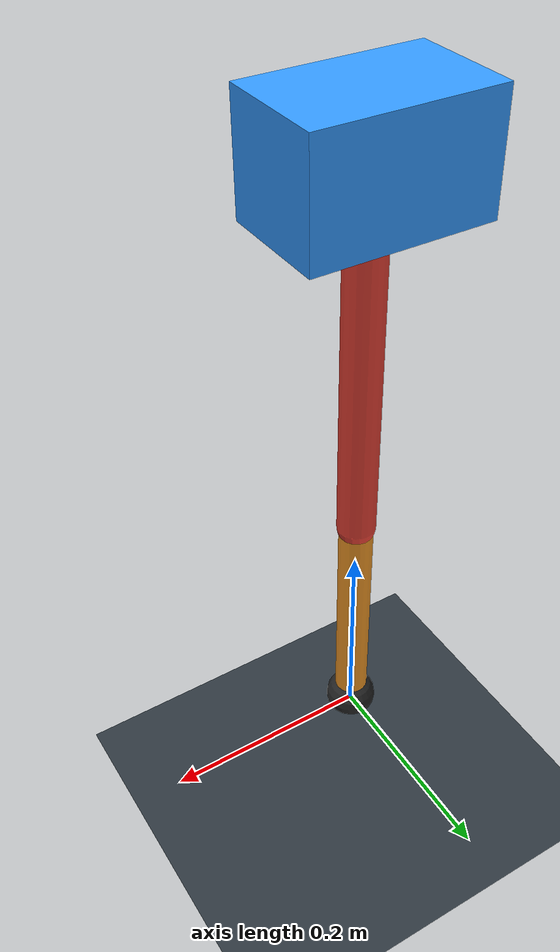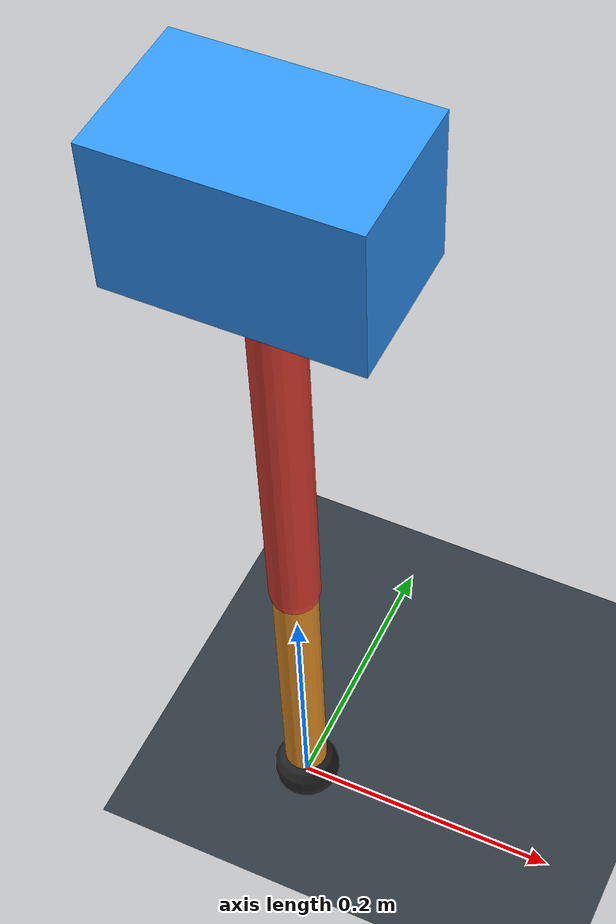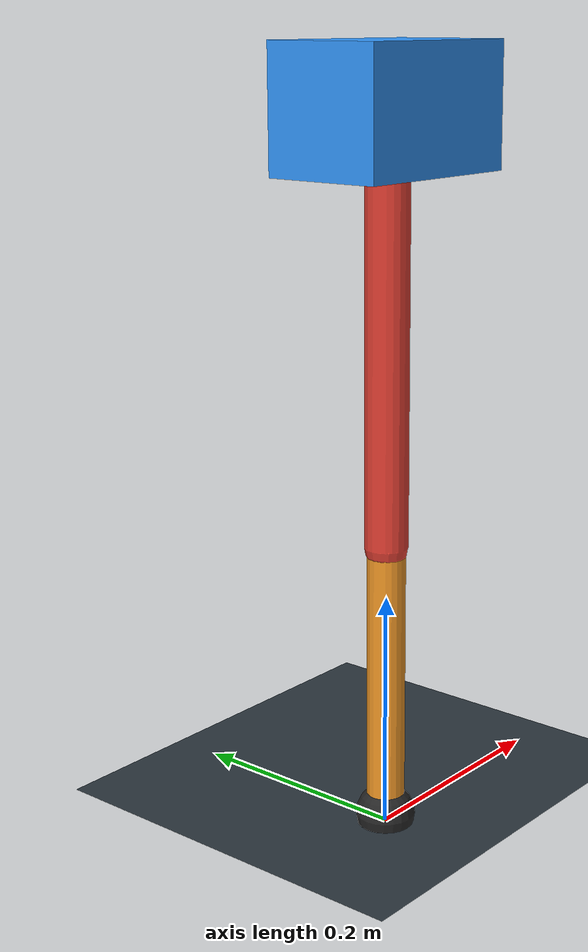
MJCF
<mujoco model="single_axis_two_bar">
  <compiler angle="radian" inertiafromgeom="true"/>
  <option timestep="0.001" integrator="implicitfast" gravity="0 0 -9.81"/>
  <default>
    <joint damping="0.08"/>
    <geom friction="1.2 0.01 0.0001" condim="3"/>
  </default>
  <worldbody>
    <geom name="floor" type="plane" size="5 5 0.1" rgba="0.18 0.22 0.25 1"/>
    <body name="carriage" pos="0 0 0.5935681809007906">
      <joint name="pole_slide" type="slide" axis="0 0 1"/>
      <geom name="payload" type="box" size="0.08 0.05 0.05" mass="3.134621029302633" rgba="0.2 0.6 1 1"/>
      <body name="thigh" pos="0 0 0">
        <joint name="hip" type="hinge" axis="0 1 0"/>
        <geom name="thigh_link" type="capsule" fromto="0 0 0 0 0 -0.34993112942055365" size="0.018" mass="0.24933055364405782" rgba="0.9 0.25 0.2 1"/>
        <body name="shank" pos="0 0 -0.34993112942055365">
          <joint name="knee" type="hinge" axis="0 1 0"/>
          <geom name="shank_link" type="capsule" fromto="0 0 0 0 0 -0.23622163439469435" size="0.016" mass="0.1683110358997228" rgba="0.95 0.6 0.15 1"/>
          <geom name="foot" type="sphere" pos="0 0 -0.23622163439469435" size="0.025" mass="0.03" rgba="0.15 0.15 0.15 1"/>
          <site name="toe" pos="0 0 -0.23622163439469435" size="0.008"/>
        </body>
      </body>
    </body>
  </worldbody>
  <actuator>
    <motor name="hip_motor" joint="hip" ctrlrange="-22.67408957760366 22.67408957760366"/>
    <motor name="knee_motor" joint="knee" ctrlrange="-127.1087637640433 127.1087637640433"/>
  </actuator>
</mujoco>
